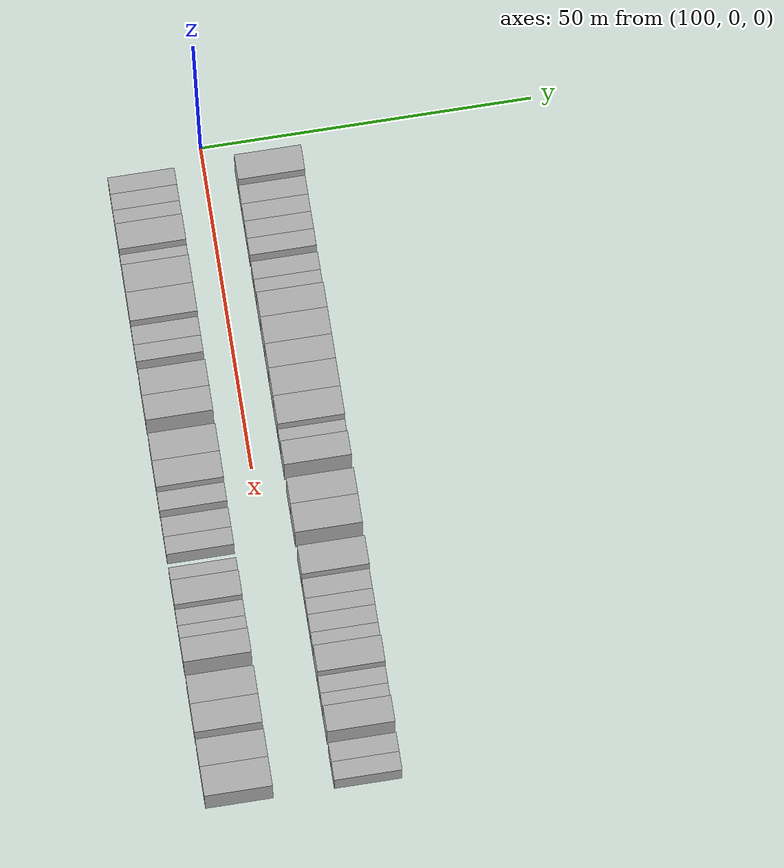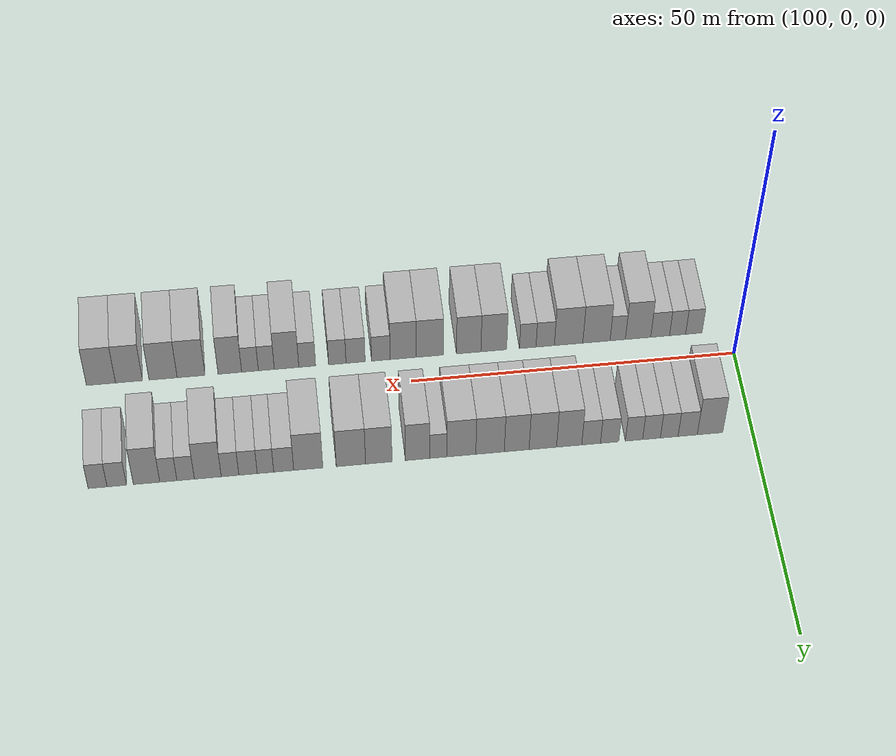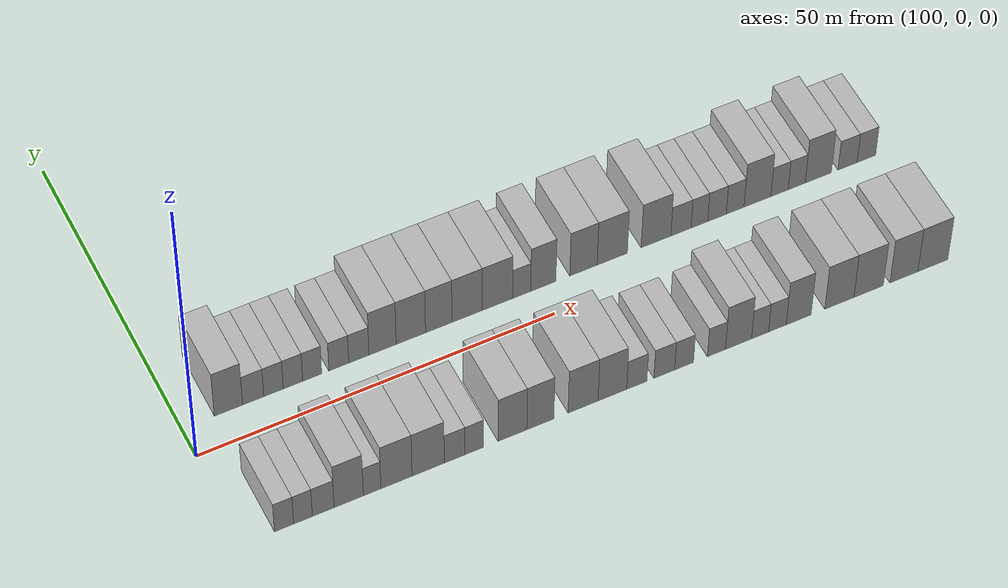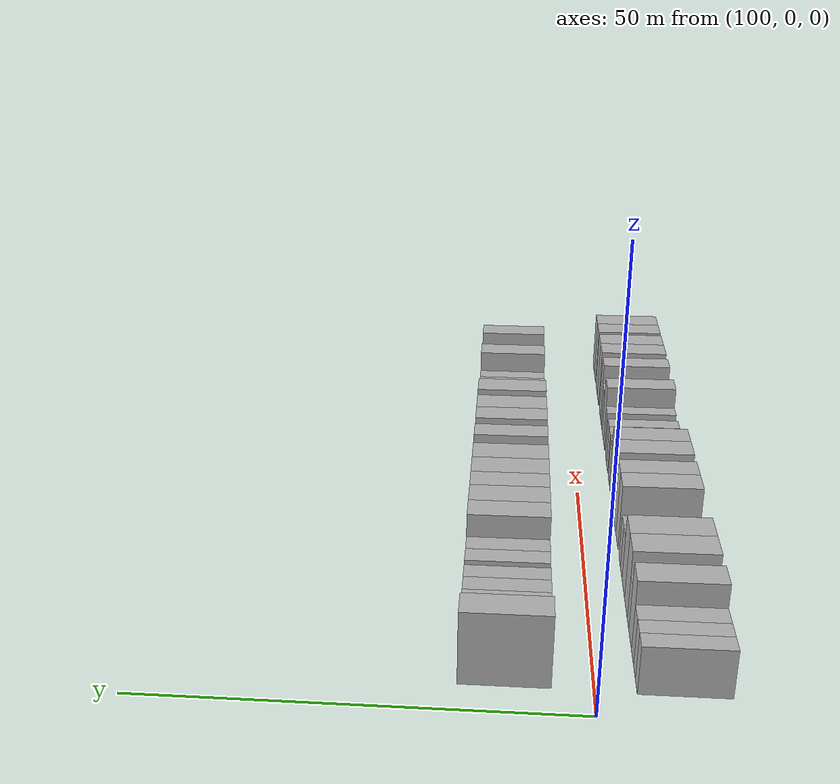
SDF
<sdf version="1.6">
 <world name="default">
  <model name="building_26">
   <static>1</static>
   <pose>106.4077 9.5000 0 0.000000 0.000000 1.570796</pose>
   <link name="link">
    <pose>0 0 4.50 0 0 0</pose>
    <collision name="collision"><geometry><box><size>10.0000 3.8743 9.0000</size></box></geometry></collision>
    <visual name="visual">
     <cast_shadows>0</cast_shadows>
     <geometry><box><size>10.0000 3.8743 9.0000</size></box></geometry>
     <material>
      <script>
       <uri>model://HANNAS_wall/materials/scripts</uri>
       <uri>model://HANNAS_wall/materials/textures</uri>
       <name>vrc/HANNAS_wall</name>
      </script>
     </material>
    </visual>
   </link>
  </model>
  <model name="building_27">
   <static>1</static>
   <pose>109.8046 9.5000 0 0.000000 0.000000 1.570796</pose>
   <link name="link">
    <pose>0 0 3.00 0 0 0</pose>
    <collision name="collision"><geometry><box><size>10.0000 2.9195 6.0000</size></box></geometry></collision>
    <visual name="visual">
     <cast_shadows>0</cast_shadows>
     <geometry><box><size>10.0000 2.9195 6.0000</size></box></geometry>
     <material>
      <script>
       <uri>model://HANNAS_wall/materials/scripts</uri>
       <uri>model://HANNAS_wall/materials/textures</uri>
       <name>vrc/HANNAS_wall</name>
      </script>
     </material>
    </visual>
   </link>
  </model>
  <model name="building_28">
   <static>1</static>
   <pose>112.6101 9.5000 0 0.000000 0.000000 1.570796</pose>
   <link name="link">
    <pose>0 0 3.00 0 0 0</pose>
    <collision name="collision"><geometry><box><size>10.0000 2.6914 6.0000</size></box></geometry></collision>
    <visual name="visual">
     <cast_shadows>0</cast_shadows>
     <geometry><box><size>10.0000 2.6914 6.0000</size></box></geometry>
     <material>
      <script>
       <uri>model://HANNAS_wall/materials/scripts</uri>
       <uri>model://HANNAS_wall/materials/textures</uri>
       <name>vrc/HANNAS_wall</name>
      </script>
     </material>
    </visual>
   </link>
  </model>
  <model name="building_29">
   <static>1</static>
   <pose>115.3013 9.5000 0 0.000000 0.000000 1.570796</pose>
   <link name="link">
    <pose>0 0 3.00 0 0 0</pose>
    <collision name="collision"><geometry><box><size>10.0000 2.6911 6.0000</size></box></geometry></collision>
    <visual name="visual">
     <cast_shadows>0</cast_shadows>
     <geometry><box><size>10.0000 2.6911 6.0000</size></box></geometry>
     <material>
      <script>
       <uri>model://HANNAS_wall/materials/scripts</uri>
       <uri>model://HANNAS_wall/materials/textures</uri>
       <name>vrc/HANNAS_wall</name>
      </script>
     </material>
    </visual>
   </link>
  </model>
  <model name="building_30">
   <static>1</static>
   <pose>117.9586 9.5000 0 0.000000 0.000000 1.570796</pose>
   <link name="link">
    <pose>0 0 3.00 0 0 0</pose>
    <collision name="collision"><geometry><box><size>10.0000 2.6236 6.0000</size></box></geometry></collision>
    <visual name="visual">
     <cast_shadows>0</cast_shadows>
     <geometry><box><size>10.0000 2.6236 6.0000</size></box></geometry>
     <material>
      <script>
       <uri>model://HANNAS_wall/materials/scripts</uri>
       <uri>model://HANNAS_wall/materials/textures</uri>
       <name>vrc/HANNAS_wall</name>
      </script>
     </material>
    </visual>
   </link>
  </model>
  <model name="building_31">
   <static>1</static>
   <pose>121.6517 9.5000 0 0.000000 0.000000 1.570796</pose>
   <link name="link">
    <pose>0 0 3.00 0 0 0</pose>
    <collision name="collision"><geometry><box><size>10.0000 2.7625 6.0000</size></box></geometry></collision>
    <visual name="visual">
     <cast_shadows>0</cast_shadows>
     <geometry><box><size>10.0000 2.7625 6.0000</size></box></geometry>
     <material>
      <script>
       <uri>model://HANNAS_wall/materials/scripts</uri>
       <uri>model://HANNAS_wall/materials/textures</uri>
       <name>vrc/HANNAS_wall</name>
      </script>
     </material>
    </visual>
   </link>
  </model>
  <model name="building_32">
   <static>1</static>
   <pose>124.4474 9.5000 0 0.000000 0.000000 1.570796</pose>
   <link name="link">
    <pose>0 0 3.00 0 0 0</pose>
    <collision name="collision"><geometry><box><size>10.0000 2.8290 6.0000</size></box></geometry></collision>
    <visual name="visual">
     <cast_shadows>0</cast_shadows>
     <geometry><box><size>10.0000 2.8290 6.0000</size></box></geometry>
     <material>
      <script>
       <uri>model://HANNAS_wall/materials/scripts</uri>
       <uri>model://HANNAS_wall/materials/textures</uri>
       <name>vrc/HANNAS_wall</name>
      </script>
     </material>
    </visual>
   </link>
  </model>
  <model name="building_33">
   <static>1</static>
   <pose>127.7684 9.5000 0 0.000000 0.000000 1.570796</pose>
   <link name="link">
    <pose>0 0 4.50 0 0 0</pose>
    <collision name="collision"><geometry><box><size>10.0000 3.8130 9.0000</size></box></geometry></collision>
    <visual name="visual">
     <cast_shadows>0</cast_shadows>
     <geometry><box><size>10.0000 3.8130 9.0000</size></box></geometry>
     <material>
      <script>
       <uri>model://HANNAS_wall/materials/scripts</uri>
       <uri>model://HANNAS_wall/materials/textures</uri>
       <name>vrc/HANNAS_wall</name>
      </script>
     </material>
    </visual>
   </link>
  </model>
  <model name="building_34">
   <static>1</static>
   <pose>131.7432 9.5000 0 0.000000 0.000000 1.570796</pose>
   <link name="link">
    <pose>0 0 4.50 0 0 0</pose>
    <collision name="collision"><geometry><box><size>10.0000 4.1367 9.0000</size></box></geometry></collision>
    <visual name="visual">
     <cast_shadows>0</cast_shadows>
     <geometry><box><size>10.0000 4.1367 9.0000</size></box></geometry>
     <material>
      <script>
       <uri>model://HANNAS_wall/materials/scripts</uri>
       <uri>model://HANNAS_wall/materials/textures</uri>
       <name>vrc/HANNAS_wall</name>
      </script>
     </material>
    </visual>
   </link>
  </model>
  <model name="building_35">
   <static>1</static>
   <pose>135.6767 9.5000 0 0.000000 0.000000 1.570796</pose>
   <link name="link">
    <pose>0 0 4.50 0 0 0</pose>
    <collision name="collision"><geometry><box><size>10.0000 3.7302 9.0000</size></box></geometry></collision>
    <visual name="visual">
     <cast_shadows>0</cast_shadows>
     <geometry><box><size>10.0000 3.7302 9.0000</size></box></geometry>
     <material>
      <script>
       <uri>model://HANNAS_wall/materials/scripts</uri>
       <uri>model://HANNAS_wall/materials/textures</uri>
       <name>vrc/HANNAS_wall</name>
      </script>
     </material>
    </visual>
   </link>
  </model>
  <model name="building_36">
   <static>1</static>
   <pose>139.6841 9.5000 0 0.000000 0.000000 1.570796</pose>
   <link name="link">
    <pose>0 0 4.50 0 0 0</pose>
    <collision name="collision"><geometry><box><size>10.0000 4.2847 9.0000</size></box></geometry></collision>
    <visual name="visual">
     <cast_shadows>0</cast_shadows>
     <geometry><box><size>10.0000 4.2847 9.0000</size></box></geometry>
     <material>
      <script>
       <uri>model://HANNAS_wall/materials/scripts</uri>
       <uri>model://HANNAS_wall/materials/textures</uri>
       <name>vrc/HANNAS_wall</name>
      </script>
     </material>
    </visual>
   </link>
  </model>
  <model name="building_37">
   <static>1</static>
   <pose>143.9996 9.5000 0 0.000000 0.000000 1.570796</pose>
   <link name="link">
    <pose>0 0 4.50 0 0 0</pose>
    <collision name="collision"><geometry><box><size>10.0000 4.3463 9.0000</size></box></geometry></collision>
    <visual name="visual">
     <cast_shadows>0</cast_shadows>
     <geometry><box><size>10.0000 4.3463 9.0000</size></box></geometry>
     <material>
      <script>
       <uri>model://HANNAS_wall/materials/scripts</uri>
       <uri>model://HANNAS_wall/materials/textures</uri>
       <name>vrc/HANNAS_wall</name>
      </script>
     </material>
    </visual>
   </link>
  </model>
  <model name="building_38">
   <static>1</static>
   <pose>147.4620 9.5000 0 0.000000 0.000000 1.570796</pose>
   <link name="link">
    <pose>0 0 3.00 0 0 0</pose>
    <collision name="collision"><geometry><box><size>10.0000 2.5786 6.0000</size></box></geometry></collision>
    <visual name="visual">
     <cast_shadows>0</cast_shadows>
     <geometry><box><size>10.0000 2.5786 6.0000</size></box></geometry>
     <material>
      <script>
       <uri>model://HANNAS_wall/materials/scripts</uri>
       <uri>model://HANNAS_wall/materials/textures</uri>
       <name>vrc/HANNAS_wall</name>
      </script>
     </material>
    </visual>
   </link>
  </model>
  <model name="building_39">
   <static>1</static>
   <pose>150.5618 9.5000 0 0.000000 0.000000 1.570796</pose>
   <link name="link">
    <pose>0 0 4.50 0 0 0</pose>
    <collision name="collision"><geometry><box><size>10.0000 3.6210 9.0000</size></box></geometry></collision>
    <visual name="visual">
     <cast_shadows>0</cast_shadows>
     <geometry><box><size>10.0000 3.6210 9.0000</size></box></geometry>
     <material>
      <script>
       <uri>model://HANNAS_wall/materials/scripts</uri>
       <uri>model://HANNAS_wall/materials/textures</uri>
       <name>vrc/HANNAS_wall</name>
      </script>
     </material>
    </visual>
   </link>
  </model>
  <model name="building_40">
   <static>1</static>
   <pose>156.3485 9.5000 0 0.000000 0.000000 1.570796</pose>
   <link name="link">
    <pose>0 0 4.50 0 0 0</pose>
    <collision name="collision"><geometry><box><size>10.0000 3.9524 9.0000</size></box></geometry></collision>
    <visual name="visual">
     <cast_shadows>0</cast_shadows>
     <geometry><box><size>10.0000 3.9524 9.0000</size></box></geometry>
     <material>
      <script>
       <uri>model://HANNAS_wall/materials/scripts</uri>
       <uri>model://HANNAS_wall/materials/textures</uri>
       <name>vrc/HANNAS_wall</name>
      </script>
     </material>
    </visual>
   </link>
  </model>
  <model name="building_41">
   <static>1</static>
   <pose>160.5122 9.5000 0 0.000000 0.000000 1.570796</pose>
   <link name="link">
    <pose>0 0 4.50 0 0 0</pose>
    <collision name="collision"><geometry><box><size>10.0000 4.3750 9.0000</size></box></geometry></collision>
    <visual name="visual">
     <cast_shadows>0</cast_shadows>
     <geometry><box><size>10.0000 4.3750 9.0000</size></box></geometry>
     <material>
      <script>
       <uri>model://HANNAS_wall/materials/scripts</uri>
       <uri>model://HANNAS_wall/materials/textures</uri>
       <name>vrc/HANNAS_wall</name>
      </script>
     </material>
    </visual>
   </link>
  </model>
  <model name="building_42">
   <static>1</static>
   <pose>166.8657 9.5000 0 0.000000 0.000000 1.570796</pose>
   <link name="link">
    <pose>0 0 4.50 0 0 0</pose>
    <collision name="collision"><geometry><box><size>10.0000 4.3320 9.0000</size></box></geometry></collision>
    <visual name="visual">
     <cast_shadows>0</cast_shadows>
     <geometry><box><size>10.0000 4.3320 9.0000</size></box></geometry>
     <material>
      <script>
       <uri>model://HANNAS_wall/materials/scripts</uri>
       <uri>model://HANNAS_wall/materials/textures</uri>
       <name>vrc/HANNAS_wall</name>
      </script>
     </material>
    </visual>
   </link>
  </model>
  <model name="building_43">
   <static>1</static>
   <pose>170.5135 9.5000 0 0.000000 0.000000 1.570796</pose>
   <link name="link">
    <pose>0 0 3.00 0 0 0</pose>
    <collision name="collision"><geometry><box><size>10.0000 2.9636 6.0000</size></box></geometry></collision>
    <visual name="visual">
     <cast_shadows>0</cast_shadows>
     <geometry><box><size>10.0000 2.9636 6.0000</size></box></geometry>
     <material>
      <script>
       <uri>model://HANNAS_wall/materials/scripts</uri>
       <uri>model://HANNAS_wall/materials/textures</uri>
       <name>vrc/HANNAS_wall</name>
      </script>
     </material>
    </visual>
   </link>
  </model>
  <model name="building_44">
   <static>1</static>
   <pose>173.2169 9.5000 0 0.000000 0.000000 1.570796</pose>
   <link name="link">
    <pose>0 0 3.00 0 0 0</pose>
    <collision name="collision"><geometry><box><size>10.0000 2.4432 6.0000</size></box></geometry></collision>
    <visual name="visual">
     <cast_shadows>0</cast_shadows>
     <geometry><box><size>10.0000 2.4432 6.0000</size></box></geometry>
     <material>
      <script>
       <uri>model://HANNAS_wall/materials/scripts</uri>
       <uri>model://HANNAS_wall/materials/textures</uri>
       <name>vrc/HANNAS_wall</name>
      </script>
     </material>
    </visual>
   </link>
  </model>
  <model name="building_45">
   <static>1</static>
   <pose>175.8030 9.5000 0 0.000000 0.000000 1.570796</pose>
   <link name="link">
    <pose>0 0 3.00 0 0 0</pose>
    <collision name="collision"><geometry><box><size>10.0000 2.7289 6.0000</size></box></geometry></collision>
    <visual name="visual">
     <cast_shadows>0</cast_shadows>
     <geometry><box><size>10.0000 2.7289 6.0000</size></box></geometry>
     <material>
      <script>
       <uri>model://HANNAS_wall/materials/scripts</uri>
       <uri>model://HANNAS_wall/materials/textures</uri>
       <name>vrc/HANNAS_wall</name>
      </script>
     </material>
    </visual>
   </link>
  </model>
  <model name="building_46">
   <static>1</static>
   <pose>178.4730 9.5000 0 0.000000 0.000000 1.570796</pose>
   <link name="link">
    <pose>0 0 3.00 0 0 0</pose>
    <collision name="collision"><geometry><box><size>10.0000 2.6110 6.0000</size></box></geometry></collision>
    <visual name="visual">
     <cast_shadows>0</cast_shadows>
     <geometry><box><size>10.0000 2.6110 6.0000</size></box></geometry>
     <material>
      <script>
       <uri>model://HANNAS_wall/materials/scripts</uri>
       <uri>model://HANNAS_wall/materials/textures</uri>
       <name>vrc/HANNAS_wall</name>
      </script>
     </material>
    </visual>
   </link>
  </model>
  <model name="building_47">
   <static>1</static>
   <pose>181.7664 9.5000 0 0.000000 0.000000 1.570796</pose>
   <link name="link">
    <pose>0 0 4.50 0 0 0</pose>
    <collision name="collision"><geometry><box><size>10.0000 3.9757 9.0000</size></box></geometry></collision>
    <visual name="visual">
     <cast_shadows>0</cast_shadows>
     <geometry><box><size>10.0000 3.9757 9.0000</size></box></geometry>
     <material>
      <script>
       <uri>model://HANNAS_wall/materials/scripts</uri>
       <uri>model://HANNAS_wall/materials/textures</uri>
       <name>vrc/HANNAS_wall</name>
      </script>
     </material>
    </visual>
   </link>
  </model>
  <model name="building_48">
   <static>1</static>
   <pose>185.0436 9.5000 0 0.000000 0.000000 1.570796</pose>
   <link name="link">
    <pose>0 0 3.00 0 0 0</pose>
    <collision name="collision"><geometry><box><size>10.0000 2.5789 6.0000</size></box></geometry></collision>
    <visual name="visual">
     <cast_shadows>0</cast_shadows>
     <geometry><box><size>10.0000 2.5789 6.0000</size></box></geometry>
     <material>
      <script>
       <uri>model://HANNAS_wall/materials/scripts</uri>
       <uri>model://HANNAS_wall/materials/textures</uri>
       <name>vrc/HANNAS_wall</name>
      </script>
     </material>
    </visual>
   </link>
  </model>
  <model name="building_49">
   <static>1</static>
   <pose>187.5973 9.5000 0 0.000000 0.000000 1.570796</pose>
   <link name="link">
    <pose>0 0 3.00 0 0 0</pose>
    <collision name="collision"><geometry><box><size>10.0000 2.5284 6.0000</size></box></geometry></collision>
    <visual name="visual">
     <cast_shadows>0</cast_shadows>
     <geometry><box><size>10.0000 2.5284 6.0000</size></box></geometry>
     <material>
      <script>
       <uri>model://HANNAS_wall/materials/scripts</uri>
       <uri>model://HANNAS_wall/materials/textures</uri>
       <name>vrc/HANNAS_wall</name>
      </script>
     </material>
    </visual>
   </link>
  </model>
  <model name="building_50">
   <static>1</static>
   <pose>190.8108 9.5000 0 0.000000 0.000000 1.570796</pose>
   <link name="link">
    <pose>0 0 4.50 0 0 0</pose>
    <collision name="collision"><geometry><box><size>10.0000 3.8985 9.0000</size></box></geometry></collision>
    <visual name="visual">
     <cast_shadows>0</cast_shadows>
     <geometry><box><size>10.0000 3.8985 9.0000</size></box></geometry>
     <material>
      <script>
       <uri>model://HANNAS_wall/materials/scripts</uri>
       <uri>model://HANNAS_wall/materials/textures</uri>
       <name>vrc/HANNAS_wall</name>
      </script>
     </material>
    </visual>
   </link>
  </model>
  <model name="building_51">
   <static>1</static>
   <pose>195.1920 9.5000 0 0.000000 0.000000 1.570796</pose>
   <link name="link">
    <pose>0 0 3.00 0 0 0</pose>
    <collision name="collision"><geometry><box><size>10.0000 2.8640 6.0000</size></box></geometry></collision>
    <visual name="visual">
     <cast_shadows>0</cast_shadows>
     <geometry><box><size>10.0000 2.8640 6.0000</size></box></geometry>
     <material>
      <script>
       <uri>model://HANNAS_wall/materials/scripts</uri>
       <uri>model://HANNAS_wall/materials/textures</uri>
       <name>vrc/HANNAS_wall</name>
      </script>
     </material>
    </visual>
   </link>
  </model>
  <model name="building_52">
   <static>1</static>
   <pose>198.0136 9.5000 0 0.000000 0.000000 1.570796</pose>
   <link name="link">
    <pose>0 0 3.00 0 0 0</pose>
    <collision name="collision"><geometry><box><size>10.0000 2.7792 6.0000</size></box></geometry></collision>
    <visual name="visual">
     <cast_shadows>0</cast_shadows>
     <geometry><box><size>10.0000 2.7792 6.0000</size></box></geometry>
     <material>
      <script>
       <uri>model://HANNAS_wall/materials/scripts</uri>
       <uri>model://HANNAS_wall/materials/textures</uri>
       <name>vrc/HANNAS_wall</name>
      </script>
     </material>
    </visual>
   </link>
  </model>
  <model name="building_80">
   <static>1</static>
   <pose>105.4571 -9.5000 0 0.000000 0.000000 1.570796</pose>
   <link name="link">
    <pose>0 0 3.00 0 0 0</pose>
    <collision name="collision"><geometry><box><size>10.0000 2.5823 6.0000</size></box></geometry></collision>
    <visual name="visual">
     <cast_shadows>0</cast_shadows>
     <geometry><box><size>10.0000 2.5823 6.0000</size></box></geometry>
     <material>
      <script>
       <uri>model://HANNAS_wall/materials/scripts</uri>
       <uri>model://HANNAS_wall/materials/textures</uri>
       <name>vrc/HANNAS_wall</name>
      </script>
     </material>
    </visual>
   </link>
  </model>
  <model name="building_81">
   <static>1</static>
   <pose>108.0117 -9.5000 0 0.000000 0.000000 1.570796</pose>
   <link name="link">
    <pose>0 0 3.00 0 0 0</pose>
    <collision name="collision"><geometry><box><size>10.0000 2.5270 6.0000</size></box></geometry></collision>
    <visual name="visual">
     <cast_shadows>0</cast_shadows>
     <geometry><box><size>10.0000 2.5270 6.0000</size></box></geometry>
     <material>
      <script>
       <uri>model://HANNAS_wall/materials/scripts</uri>
       <uri>model://HANNAS_wall/materials/textures</uri>
       <name>vrc/HANNAS_wall</name>
      </script>
     </material>
    </visual>
   </link>
  </model>
  <model name="building_82">
   <static>1</static>
   <pose>110.7518 -9.5000 0 0.000000 0.000000 1.570796</pose>
   <link name="link">
    <pose>0 0 3.00 0 0 0</pose>
    <collision name="collision"><geometry><box><size>10.0000 2.9533 6.0000</size></box></geometry></collision>
    <visual name="visual">
     <cast_shadows>0</cast_shadows>
     <geometry><box><size>10.0000 2.9533 6.0000</size></box></geometry>
     <material>
      <script>
       <uri>model://HANNAS_wall/materials/scripts</uri>
       <uri>model://HANNAS_wall/materials/textures</uri>
       <name>vrc/HANNAS_wall</name>
      </script>
     </material>
    </visual>
   </link>
  </model>
  <model name="building_83">
   <static>1</static>
   <pose>114.2157 -9.5000 0 0.000000 0.000000 1.570796</pose>
   <link name="link">
    <pose>0 0 4.50 0 0 0</pose>
    <collision name="collision"><geometry><box><size>10.0000 3.9744 9.0000</size></box></geometry></collision>
    <visual name="visual">
     <cast_shadows>0</cast_shadows>
     <geometry><box><size>10.0000 3.9744 9.0000</size></box></geometry>
     <material>
      <script>
       <uri>model://HANNAS_wall/materials/scripts</uri>
       <uri>model://HANNAS_wall/materials/textures</uri>
       <name>vrc/HANNAS_wall</name>
      </script>
     </material>
    </visual>
   </link>
  </model>
  <model name="building_84">
   <static>1</static>
   <pose>117.4042 -9.5000 0 0.000000 0.000000 1.570796</pose>
   <link name="link">
    <pose>0 0 3.00 0 0 0</pose>
    <collision name="collision"><geometry><box><size>10.0000 2.4028 6.0000</size></box></geometry></collision>
    <visual name="visual">
     <cast_shadows>0</cast_shadows>
     <geometry><box><size>10.0000 2.4028 6.0000</size></box></geometry>
     <material>
      <script>
       <uri>model://HANNAS_wall/materials/scripts</uri>
       <uri>model://HANNAS_wall/materials/textures</uri>
       <name>vrc/HANNAS_wall</name>
      </script>
     </material>
    </visual>
   </link>
  </model>
  <model name="building_85">
   <static>1</static>
   <pose>120.7408 -9.5000 0 0.000000 0.000000 1.570796</pose>
   <link name="link">
    <pose>0 0 4.50 0 0 0</pose>
    <collision name="collision"><geometry><box><size>10.0000 4.2702 9.0000</size></box></geometry></collision>
    <visual name="visual">
     <cast_shadows>0</cast_shadows>
     <geometry><box><size>10.0000 4.2702 9.0000</size></box></geometry>
     <material>
      <script>
       <uri>model://HANNAS_wall/materials/scripts</uri>
       <uri>model://HANNAS_wall/materials/textures</uri>
       <name>vrc/HANNAS_wall</name>
      </script>
     </material>
    </visual>
   </link>
  </model>
  <model name="building_86">
   <static>1</static>
   <pose>125.0940 -9.5000 0 0.000000 0.000000 1.570796</pose>
   <link name="link">
    <pose>0 0 4.50 0 0 0</pose>
    <collision name="collision"><geometry><box><size>10.0000 4.4362 9.0000</size></box></geometry></collision>
    <visual name="visual">
     <cast_shadows>0</cast_shadows>
     <geometry><box><size>10.0000 4.4362 9.0000</size></box></geometry>
     <material>
      <script>
       <uri>model://HANNAS_wall/materials/scripts</uri>
       <uri>model://HANNAS_wall/materials/textures</uri>
       <name>vrc/HANNAS_wall</name>
      </script>
     </material>
    </visual>
   </link>
  </model>
  <model name="building_87">
   <static>1</static>
   <pose>128.7476 -9.5000 0 0.000000 0.000000 1.570796</pose>
   <link name="link">
    <pose>0 0 3.00 0 0 0</pose>
    <collision name="collision"><geometry><box><size>10.0000 2.8710 6.0000</size></box></geometry></collision>
    <visual name="visual">
     <cast_shadows>0</cast_shadows>
     <geometry><box><size>10.0000 2.8710 6.0000</size></box></geometry>
     <material>
      <script>
       <uri>model://HANNAS_wall/materials/scripts</uri>
       <uri>model://HANNAS_wall/materials/textures</uri>
       <name>vrc/HANNAS_wall</name>
      </script>
     </material>
    </visual>
   </link>
  </model>
  <model name="building_88">
   <static>1</static>
   <pose>131.4749 -9.5000 0 0.000000 0.000000 1.570796</pose>
   <link name="link">
    <pose>0 0 3.00 0 0 0</pose>
    <collision name="collision"><geometry><box><size>10.0000 2.5837 6.0000</size></box></geometry></collision>
    <visual name="visual">
     <cast_shadows>0</cast_shadows>
     <geometry><box><size>10.0000 2.5837 6.0000</size></box></geometry>
     <material>
      <script>
       <uri>model://HANNAS_wall/materials/scripts</uri>
       <uri>model://HANNAS_wall/materials/textures</uri>
       <name>vrc/HANNAS_wall</name>
      </script>
     </material>
    </visual>
   </link>
  </model>
  <model name="building_89">
   <static>1</static>
   <pose>136.7636 -9.5000 0 0.000000 0.000000 1.570796</pose>
   <link name="link">
    <pose>0 0 4.50 0 0 0</pose>
    <collision name="collision"><geometry><box><size>10.0000 3.9936 9.0000</size></box></geometry></collision>
    <visual name="visual">
     <cast_shadows>0</cast_shadows>
     <geometry><box><size>10.0000 3.9936 9.0000</size></box></geometry>
     <material>
      <script>
       <uri>model://HANNAS_wall/materials/scripts</uri>
       <uri>model://HANNAS_wall/materials/textures</uri>
       <name>vrc/HANNAS_wall</name>
      </script>
     </material>
    </visual>
   </link>
  </model>
  <model name="building_90">
   <static>1</static>
   <pose>140.6602 -9.5000 0 0.000000 0.000000 1.570796</pose>
   <link name="link">
    <pose>0 0 4.50 0 0 0</pose>
    <collision name="collision"><geometry><box><size>10.0000 3.7996 9.0000</size></box></geometry></collision>
    <visual name="visual">
     <cast_shadows>0</cast_shadows>
     <geometry><box><size>10.0000 3.7996 9.0000</size></box></geometry>
     <material>
      <script>
       <uri>model://HANNAS_wall/materials/scripts</uri>
       <uri>model://HANNAS_wall/materials/textures</uri>
       <name>vrc/HANNAS_wall</name>
      </script>
     </material>
    </visual>
   </link>
  </model>
  <model name="building_91">
   <static>1</static>
   <pose>146.6668 -9.5000 0 0.000000 0.000000 1.570796</pose>
   <link name="link">
    <pose>0 0 4.50 0 0 0</pose>
    <collision name="collision"><geometry><box><size>10.0000 4.2137 9.0000</size></box></geometry></collision>
    <visual name="visual">
     <cast_shadows>0</cast_shadows>
     <geometry><box><size>10.0000 4.2137 9.0000</size></box></geometry>
     <material>
      <script>
       <uri>model://HANNAS_wall/materials/scripts</uri>
       <uri>model://HANNAS_wall/materials/textures</uri>
       <name>vrc/HANNAS_wall</name>
      </script>
     </material>
    </visual>
   </link>
  </model>
  <model name="building_92">
   <static>1</static>
   <pose>150.7911 -9.5000 0 0.000000 0.000000 1.570796</pose>
   <link name="link">
    <pose>0 0 4.50 0 0 0</pose>
    <collision name="collision"><geometry><box><size>10.0000 4.0348 9.0000</size></box></geometry></collision>
    <visual name="visual">
     <cast_shadows>0</cast_shadows>
     <geometry><box><size>10.0000 4.0348 9.0000</size></box></geometry>
     <material>
      <script>
       <uri>model://HANNAS_wall/materials/scripts</uri>
       <uri>model://HANNAS_wall/materials/textures</uri>
       <name>vrc/HANNAS_wall</name>
      </script>
     </material>
    </visual>
   </link>
  </model>
  <model name="building_93">
   <static>1</static>
   <pose>154.2468 -9.5000 0 0.000000 0.000000 1.570796</pose>
   <link name="link">
    <pose>0 0 3.00 0 0 0</pose>
    <collision name="collision"><geometry><box><size>10.0000 2.8766 6.0000</size></box></geometry></collision>
    <visual name="visual">
     <cast_shadows>0</cast_shadows>
     <geometry><box><size>10.0000 2.8766 6.0000</size></box></geometry>
     <material>
      <script>
       <uri>model://HANNAS_wall/materials/scripts</uri>
       <uri>model://HANNAS_wall/materials/textures</uri>
       <name>vrc/HANNAS_wall</name>
      </script>
     </material>
    </visual>
   </link>
  </model>
  <model name="building_94">
   <static>1</static>
   <pose>158.1622 -9.5000 0 0.000000 0.000000 1.570796</pose>
   <link name="link">
    <pose>0 0 3.00 0 0 0</pose>
    <collision name="collision"><geometry><box><size>10.0000 2.9542 6.0000</size></box></geometry></collision>
    <visual name="visual">
     <cast_shadows>0</cast_shadows>
     <geometry><box><size>10.0000 2.9542 6.0000</size></box></geometry>
     <material>
      <script>
       <uri>model://HANNAS_wall/materials/scripts</uri>
       <uri>model://HANNAS_wall/materials/textures</uri>
       <name>vrc/HANNAS_wall</name>
      </script>
     </material>
    </visual>
   </link>
  </model>
  <model name="building_95">
   <static>1</static>
   <pose>160.9814 -9.5000 0 0.000000 0.000000 1.570796</pose>
   <link name="link">
    <pose>0 0 3.00 0 0 0</pose>
    <collision name="collision"><geometry><box><size>10.0000 2.6843 6.0000</size></box></geometry></collision>
    <visual name="visual">
     <cast_shadows>0</cast_shadows>
     <geometry><box><size>10.0000 2.6843 6.0000</size></box></geometry>
     <material>
      <script>
       <uri>model://HANNAS_wall/materials/scripts</uri>
       <uri>model://HANNAS_wall/materials/textures</uri>
       <name>vrc/HANNAS_wall</name>
      </script>
     </material>
    </visual>
   </link>
  </model>
  <model name="building_96">
   <static>1</static>
   <pose>165.6193 -9.5000 0 0.000000 0.000000 1.570796</pose>
   <link name="link">
    <pose>0 0 3.00 0 0 0</pose>
    <collision name="collision"><geometry><box><size>10.0000 2.5915 6.0000</size></box></geometry></collision>
    <visual name="visual">
     <cast_shadows>0</cast_shadows>
     <geometry><box><size>10.0000 2.5915 6.0000</size></box></geometry>
     <material>
      <script>
       <uri>model://HANNAS_wall/materials/scripts</uri>
       <uri>model://HANNAS_wall/materials/textures</uri>
       <name>vrc/HANNAS_wall</name>
      </script>
     </material>
    </visual>
   </link>
  </model>
  <model name="building_97">
   <static>1</static>
   <pose>168.7957 -9.5000 0 0.000000 0.000000 1.570796</pose>
   <link name="link">
    <pose>0 0 4.50 0 0 0</pose>
    <collision name="collision"><geometry><box><size>10.0000 3.7614 9.0000</size></box></geometry></collision>
    <visual name="visual">
     <cast_shadows>0</cast_shadows>
     <geometry><box><size>10.0000 3.7614 9.0000</size></box></geometry>
     <material>
      <script>
       <uri>model://HANNAS_wall/materials/scripts</uri>
       <uri>model://HANNAS_wall/materials/textures</uri>
       <name>vrc/HANNAS_wall</name>
      </script>
     </material>
    </visual>
   </link>
  </model>
  <model name="building_98">
   <static>1</static>
   <pose>171.9025 -9.5000 0 0.000000 0.000000 1.570796</pose>
   <link name="link">
    <pose>0 0 3.00 0 0 0</pose>
    <collision name="collision"><geometry><box><size>10.0000 2.4521 6.0000</size></box></geometry></collision>
    <visual name="visual">
     <cast_shadows>0</cast_shadows>
     <geometry><box><size>10.0000 2.4521 6.0000</size></box></geometry>
     <material>
      <script>
       <uri>model://HANNAS_wall/materials/scripts</uri>
       <uri>model://HANNAS_wall/materials/textures</uri>
       <name>vrc/HANNAS_wall</name>
      </script>
     </material>
    </visual>
   </link>
  </model>
  <model name="building_99">
   <static>1</static>
   <pose>174.4085 -9.5000 0 0.000000 0.000000 1.570796</pose>
   <link name="link">
    <pose>0 0 3.00 0 0 0</pose>
    <collision name="collision"><geometry><box><size>10.0000 2.5599 6.0000</size></box></geometry></collision>
    <visual name="visual">
     <cast_shadows>0</cast_shadows>
     <geometry><box><size>10.0000 2.5599 6.0000</size></box></geometry>
     <material>
      <script>
       <uri>model://HANNAS_wall/materials/scripts</uri>
       <uri>model://HANNAS_wall/materials/textures</uri>
       <name>vrc/HANNAS_wall</name>
      </script>
     </material>
    </visual>
   </link>
  </model>
  <model name="building_100">
   <static>1</static>
   <pose>177.4950 -9.5000 0 0.000000 0.000000 1.570796</pose>
   <link name="link">
    <pose>0 0 4.50 0 0 0</pose>
    <collision name="collision"><geometry><box><size>10.0000 3.6131 9.0000</size></box></geometry></collision>
    <visual name="visual">
     <cast_shadows>0</cast_shadows>
     <geometry><box><size>10.0000 3.6131 9.0000</size></box></geometry>
     <material>
      <script>
       <uri>model://HANNAS_wall/materials/scripts</uri>
       <uri>model://HANNAS_wall/materials/textures</uri>
       <name>vrc/HANNAS_wall</name>
      </script>
     </material>
    </visual>
   </link>
  </model>
  <model name="building_101">
   <static>1</static>
   <pose>183.4306 -9.5000 0 0.000000 0.000000 1.570796</pose>
   <link name="link">
    <pose>0 0 4.50 0 0 0</pose>
    <collision name="collision"><geometry><box><size>10.0000 4.2582 9.0000</size></box></geometry></collision>
    <visual name="visual">
     <cast_shadows>0</cast_shadows>
     <geometry><box><size>10.0000 4.2582 9.0000</size></box></geometry>
     <material>
      <script>
       <uri>model://HANNAS_wall/materials/scripts</uri>
       <uri>model://HANNAS_wall/materials/textures</uri>
       <name>vrc/HANNAS_wall</name>
      </script>
     </material>
    </visual>
   </link>
  </model>
  <model name="building_102">
   <static>1</static>
   <pose>187.7037 -9.5000 0 0.000000 0.000000 1.570796</pose>
   <link name="link">
    <pose>0 0 4.50 0 0 0</pose>
    <collision name="collision"><geometry><box><size>10.0000 4.2879 9.0000</size></box></geometry></collision>
    <visual name="visual">
     <cast_shadows>0</cast_shadows>
     <geometry><box><size>10.0000 4.2879 9.0000</size></box></geometry>
     <material>
      <script>
       <uri>model://HANNAS_wall/materials/scripts</uri>
       <uri>model://HANNAS_wall/materials/textures</uri>
       <name>vrc/HANNAS_wall</name>
      </script>
     </material>
    </visual>
   </link>
  </model>
  <model name="building_103">
   <static>1</static>
   <pose>192.9077 -9.5000 0 0.000000 0.000000 1.570796</pose>
   <link name="link">
    <pose>0 0 4.50 0 0 0</pose>
    <collision name="collision"><geometry><box><size>10.0000 4.1202 9.0000</size></box></geometry></collision>
    <visual name="visual">
     <cast_shadows>0</cast_shadows>
     <geometry><box><size>10.0000 4.1202 9.0000</size></box></geometry>
     <material>
      <script>
       <uri>model://HANNAS_wall/materials/scripts</uri>
       <uri>model://HANNAS_wall/materials/textures</uri>
       <name>vrc/HANNAS_wall</name>
      </script>
     </material>
    </visual>
   </link>
  </model>
  <model name="building_104">
   <static>1</static>
   <pose>197.1746 -9.5000 0 0.000000 0.000000 1.570796</pose>
   <link name="link">
    <pose>0 0 4.50 0 0 0</pose>
    <collision name="collision"><geometry><box><size>10.0000 4.4136 9.0000</size></box></geometry></collision>
    <visual name="visual">
     <cast_shadows>0</cast_shadows>
     <geometry><box><size>10.0000 4.4136 9.0000</size></box></geometry>
     <material>
      <script>
       <uri>model://HANNAS_wall/materials/scripts</uri>
       <uri>model://HANNAS_wall/materials/textures</uri>
       <name>vrc/HANNAS_wall</name>
      </script>
     </material>
    </visual>
   </link>
  </model>
 </world>
</sdf>
